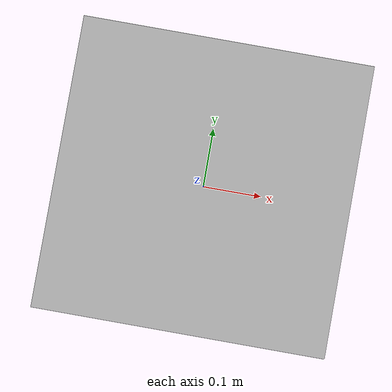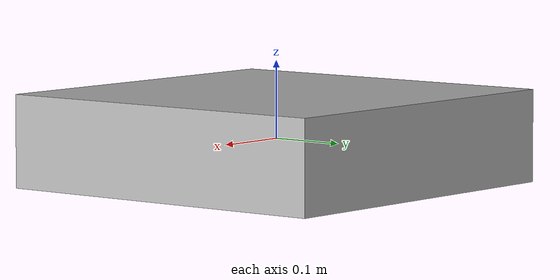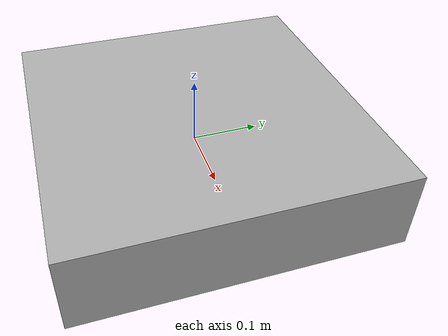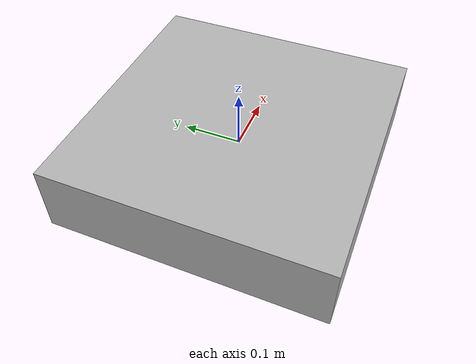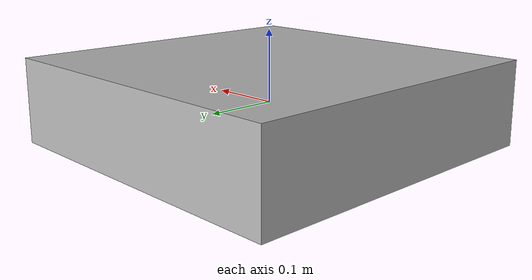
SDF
<?xml version='1.0'?>
<sdf version='1.6'>
  <model name='iris'>
    <link name='base_link'>
      <pose>0 0 0 0 0 0</pose>
      <inertial>
        <pose>0 0 0 0 0 0</pose>
        <mass>1.5</mass>
        <inertia>
          <ixx>0.029125</ixx>
          <ixy>0</ixy>
          <ixz>0</ixz>
          <iyy>0.029125</iyy>
          <iyz>0</iyz>
          <izz>0.055225</izz>
        </inertia>
      </inertial>
      <collision name='base_link_collision'>
        <pose>0 0 0 0 0 0</pose>
        <geometry>
          <box>
            <size>0.47 0.47 0.12</size>
          </box>
        </geometry>
      </collision>
      <visual name='base_link_visual'>
        <pose>0 0 0 0 0 0</pose>
        <geometry>
          <box>
            <size>0.47 0.47 0.12</size>
          </box>
        </geometry>
      </visual>
      <!-- Forward-looking camera pitched up 30 degrees -->
      <sensor name="forward_camera" type="camera">
        <pose>0.1 0 0.1 0 -0.5236 0</pose>  <!-- Position: 0.1m forward, 0.1m up; Orientation: 0 roll, -30 deg pitch (upward tilt), 0 yaw -->
        <camera>
          <horizontal_fov>1.3962634</horizontal_fov>  <!-- ~80 degrees FOV -->
          <image>
            <width>640</width>
            <height>480</height>
            <format>R8G8B8</format>
          </image>
          <clip>
            <near>0.01</near>
            <far>100</far>
          </clip>
          <distortion>
            <k1>0.0</k1>
            <k2>0.0</k2>
            <k3>0.0</k3>
            <p1>0.0</p1>
            <p2>0.0</p2>
          </distortion>
        </camera>
        <always_on>true</always_on>
        <update_rate>30.0</update_rate>
        <plugin name="forward_camera_plugin" filename="libgazebo_camera_plugin.so">
          <robotNamespace>/</robotNamespace>
          <cameraName>forward_camera</cameraName>
          <imageTopicName>image_raw</imageTopicName>
          <cameraInfoTopicName>camera_info</cameraInfoTopicName>
          <frameName>forward_camera_optical</frameName>
          <hackBaseline>0.0</hackBaseline>
          <distortionK1>0.0</distortionK1>
          <distortionK2>0.0</distortionK2>
          <distortionK3>0.0</distortionK3>
          <distortionT1>0.0</distortionT1>
          <distortionT2>0.0</distortionT2>
        </plugin>
      </sensor>
      <!-- Optical frame for the camera -->
      <link name="forward_camera_optical">
        <pose>0.1 0 0.1 0 -0.5236 0</pose>
      </link>
      <joint name="forward_camera_joint" type="fixed">
        <parent>base_link</parent>
        <child>forward_camera_optical</child>
      </joint>
    </link>
  </model>
</sdf>
